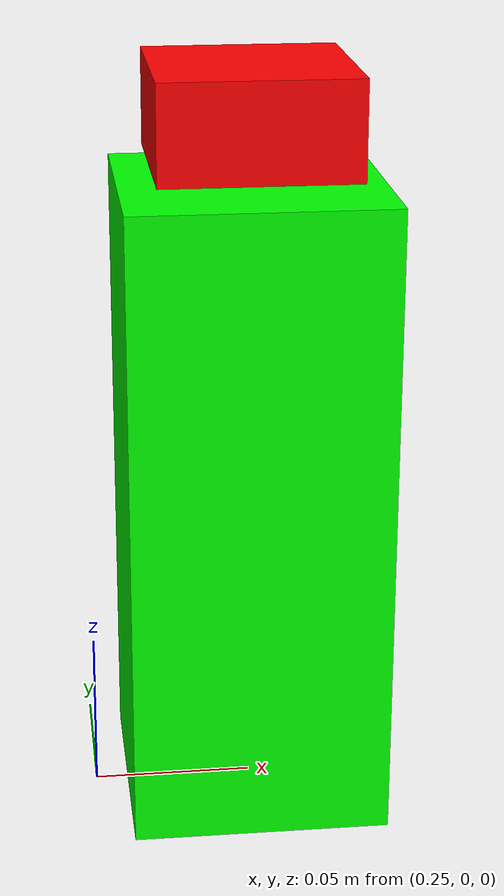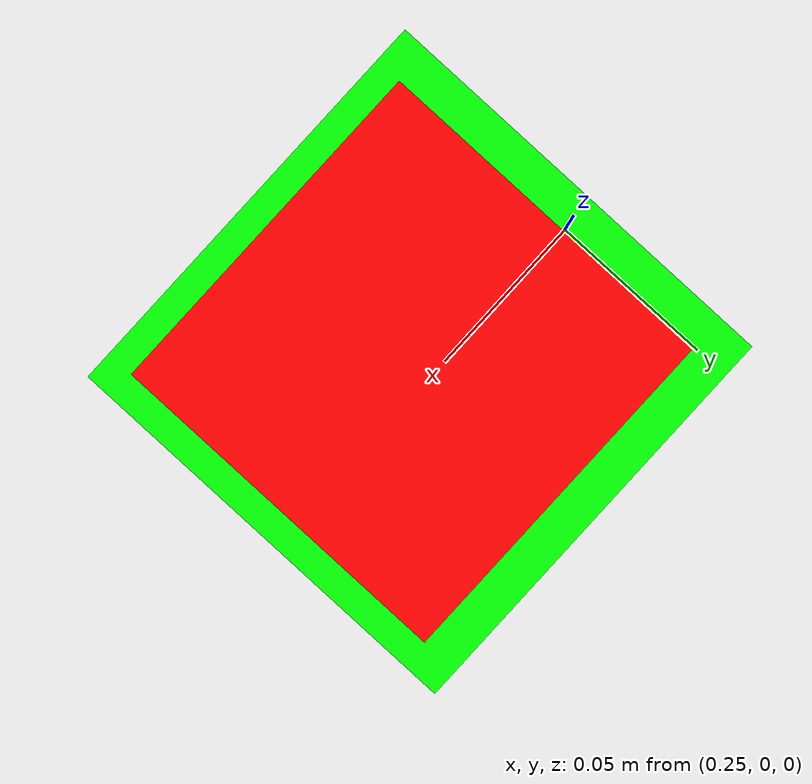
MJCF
<mujoco model="bottle">
  <compiler angle="radian" autolimits="true" meshdir="./elements/franka_emika_panda/assets"/>
  <asset>
    <mesh name="lid" file="bottle_lid.obj" scale="0.0003 0.0003 0.0001" />
  </asset>
  <size/>
  <default/>
  <worldbody>
    <body name="bottle" pos="0.3 0.0 0.1">
      <inertial pos="0 0 0" quat="0.00630474 0.751245 0.00741774 0.659952" mass="0.5" diaginertia="0.00430465 0.00387984 0.00313051"/>
      <geom size="0.04 0.04 0.1" type="box" rgba="0 1 0 1"/>
      <body name="lid" pos="0 0 0.12" euler="0 0 0">
        <inertial pos="0 0 0" mass="0.001" diaginertia="0.01 0.01 1e-05"/>
        <joint name="articulation" type="slide" axis="0 1 0" stiffness="0.0" damping="0.0" frictionloss="0.0" armature="0"/>
        <geom size="0.03 0.03 0.015" type="box" rgba="1 0 0 1" friction="1.0" condim="3" />
      </body>
    </body>
    <camera name="lid_closer" mode="targetbodycom" pos="0.5 0.25 0.3" target="lid" />
  </worldbody>
</mujoco>
